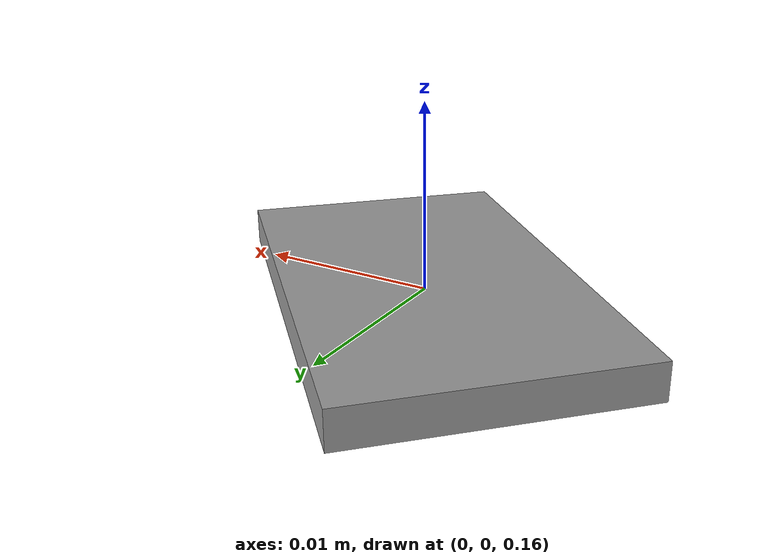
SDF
<?xml version='1.0'?>
<sdf version='1.4'>
	  <model name='IMU'>
    <link name='IMU_link'>
      <inertial>
        <mass>2e-03</mass>
        <inertia>
          <ixx>0</ixx>
          <ixy>0</ixy>
          <ixz>0</ixz>
          <iyy>0</iyy>
          <iyz>0</iyz>
          <izz>0</izz>
        </inertia>
        <pose>0 0 0.16 0 -0 0</pose>
      </inertial>
      <pose>0 0 0.16 0 -0 0.785</pose>
      <gravity>1</gravity>
      <self_collide>0</self_collide>
      <kinematic>0</kinematic>
      <enable_wind>0</enable_wind>
      <visual name='visual'>
        <pose>0 0 0 0 -0 0</pose>
        <geometry>
          <box>
            <size>0.015 0.025 0.002</size>
          </box>
        </geometry>
        <material>
          <lighting>1</lighting>
          <script>
            <uri>file://media/materials/scripts/gazebo.material</uri>
            <name>Gazebo/Grey</name>
          </script>
          <shader type='pixel'>
            <normal_map>__default__</normal_map>
          </shader>
          <ambient>0.3 0.3 0.3 1</ambient>
          <diffuse>0.7 0.7 0.7 1</diffuse>
          <specular>0.01 0.01 0.01 1</specular>
          <emissive>0 0 0 1</emissive>
        </material>
        <transparency>0</transparency>
        <cast_shadows>1</cast_shadows>
      </visual>
      <collision name='collision'>
        <laser_retro>0</laser_retro>
        <max_contacts>10</max_contacts>
        <pose>0 0 0.16 0 -0 0.785</pose>
        <geometry>
          <box>
            <size>0.015 0.025 0.002</size>
          </box>
        </geometry>
        <surface>
          <friction>
            <ode>
              <mu>1</mu>
              <mu2>1</mu2>
              <fdir1>0 0 0</fdir1>
              <slip1>0</slip1>
              <slip2>0</slip2>
            </ode>
            <torsional>
              <coefficient>1</coefficient>
              <patch_radius>0</patch_radius>
              <surface_radius>0</surface_radius>
              <use_patch_radius>1</use_patch_radius>
              <ode>
                <slip>0</slip>
              </ode>
            </torsional>
          </friction>
          <bounce>
            <restitution_coefficient>0</restitution_coefficient>
            <threshold>1e+06</threshold>
          </bounce>
          <contact>
            <collide_without_contact>0</collide_without_contact>
            <collide_without_contact_bitmask>1</collide_without_contact_bitmask>
            <collide_bitmask>1</collide_bitmask>
            <ode>
              <soft_cfm>0</soft_cfm>
              <soft_erp>0.2</soft_erp>
              <kp>1e+13</kp>
              <kd>1</kd>
              <max_vel>0.01</max_vel>
              <min_depth>0</min_depth>
            </ode>
            <bullet>
              <split_impulse>1</split_impulse>
              <split_impulse_penetration_threshold>-0.01</split_impulse_penetration_threshold>
              <soft_cfm>0</soft_cfm>
              <soft_erp>0.2</soft_erp>
              <kp>1e+13</kp>
              <kd>1</kd>
            </bullet>
          </contact>
        </surface>
      </collision>
    </link>
    <static>0</static>
    <allow_auto_disable>1</allow_auto_disable>
    <!-- Each joint must have a unique name -->
<joint type="revolute" name="joint_IMU+quadcopter">

  <!-- Position the joint at the bottom of the top link -->
  <pose>0 0 5 0 0 0</pose>

  <!-- Use the base link as the parent of the joint -->
  <parent>Quadcopter</parent>

  <!-- Use the top link as the child of the joint -->
  <child>IMU</child>

  <!-- The axis defines the joint's degree of freedom -->
  <axis>

    <!-- Revolve around the z-axis -->
    <xyz>0 0 1</xyz>

    <!-- Limit refers to the range of motion of the joint -->
    <limit>

      <!-- Use a very large number to indicate a continuous revolution -->
      <lower>0</lower>
      <upper>0</upper>
    </limit>
  </axis>
</joint>
  </model>
</sdf>
